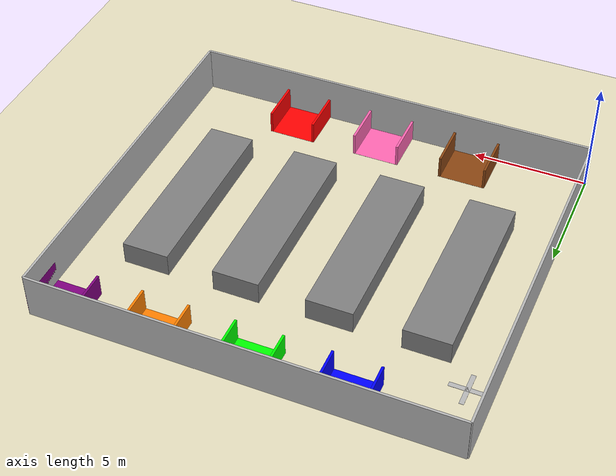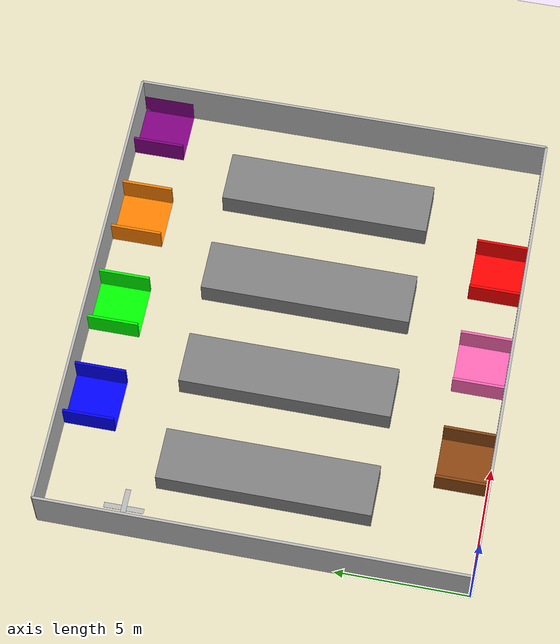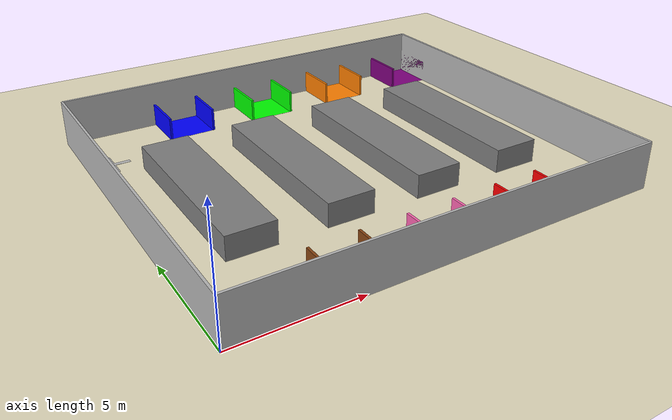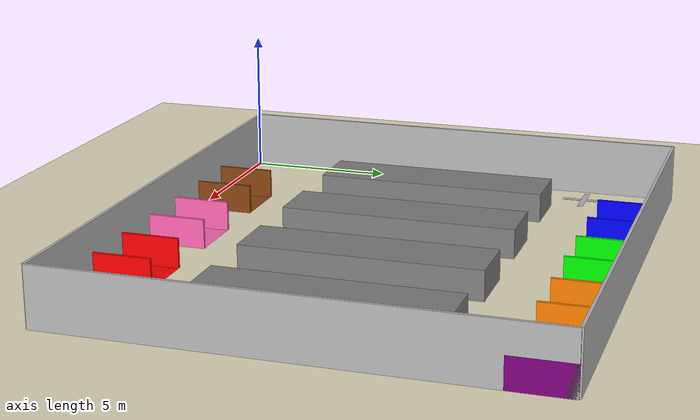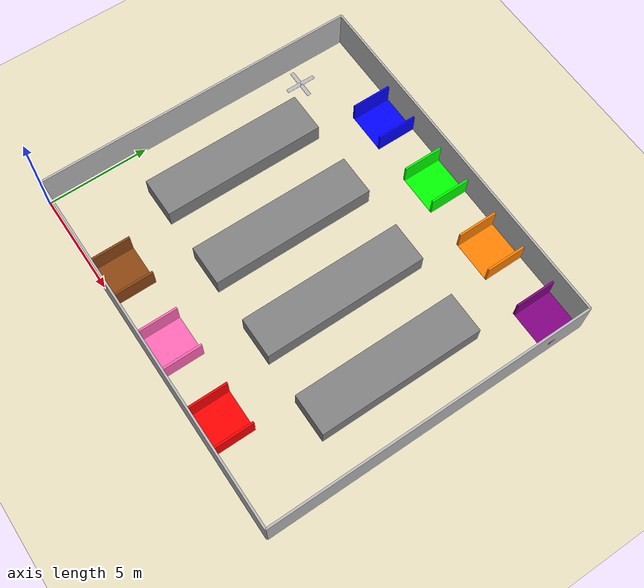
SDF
<?xml version="1.0" ?>
<sdf version="1.8">
    <world name="warehouse_world">

        <scene>
            <grid>false</grid>
        </scene>

        <physics name="1ms" type="ignored">
            <max_step_size>0.001</max_step_size>
            <real_time_factor>1.0</real_time_factor>
        </physics>

        <plugin filename="gz-sim-physics-system" name="gz::sim::systems::Physics"></plugin>
        <plugin filename="gz-sim-user-commands-system" name="gz::sim::systems::UserCommands"></plugin>
        <plugin filename="gz-sim-scene-broadcaster-system" name="gz::sim::systems::SceneBroadcaster"></plugin>

        <light type="directional" name="sun">
            <cast_shadows>true</cast_shadows>
            <pose>0 0 10 0 0 0</pose>
            <diffuse>0.8 0.8 0.8 1</diffuse>
            <specular>0.2 0.2 0.2 1</specular>
            <direction>-0.5 0.1 -0.9</direction>
        </light>

        <model name="ground_plane">
            <static>true</static>
            <pose>9 8 0 0 0 0</pose>
            <link name="link">
                <collision name="collision">
                    <geometry><plane><normal>0 0 1</normal><size>18 16</size></plane></geometry>
                </collision>
                <visual name="visual">
                    <geometry><plane><normal>0 0 1</normal><size>18 16</size></plane></geometry>
                    <material>
                        <ambient>0.85 0.82 0.70 1</ambient>
                        <diffuse>0.90 0.87 0.75 1</diffuse>
                    </material>
                </visual>
            </link>
        </model>

        <model name="wall_bottom">
            <static>true</static>
            <pose>9 0 1 0 0 0</pose>
            <link name="link">
                <collision name="collision"><geometry><box><size>18 0.1 2</size></box></geometry></collision>
                <visual name="visual"><geometry><box><size>18 0.1 2</size></box></geometry></visual>
            </link>
        </model>
        <model name="wall_left">
            <static>true</static>
            <pose>0 8 1 0 0 0</pose>
            <link name="link">
                <collision name="collision"><geometry><box><size>0.1 16 2</size></box></geometry></collision>
                <visual name="visual"><geometry><box><size>0.1 16 2</size></box></geometry></visual>
            </link>
        </model>
        <model name="wall_top">
            <static>true</static>
            <pose>9 16 1 0 0 0</pose>
            <link name="link">
                <collision name="collision"><geometry><box><size>18 0.1 2</size></box></geometry></collision>
                <visual name="visual"><geometry><box><size>18 0.1 2</size></box></geometry></visual>
            </link>
        </model>
        <model name="wall_right">
            <static>true</static>
            <pose>18 8 1 0 0 0</pose>
            <link name="link">
                <collision name="collision"><geometry><box><size>0.1 16 2</size></box></geometry></collision>
                <visual name="visual"><geometry><box><size>0.1 16 2</size></box></geometry></visual>
            </link>
        </model>

        <model name="station_A">
            <static>true</static>
            <pose>5 15 0 0 0 0</pose>
            <link name="link">
                <visual name="floor"><pose>0 0 0.001 0 0 0</pose><geometry><box><size>2 2 0.001</size></box></geometry><material><ambient>0 0 1 1</ambient><diffuse>0 0 1 1</diffuse></material></visual>
                <visual name="left_w"><pose>-1 0 0.5 0 0 0</pose><geometry><box><size>0.1 2 1</size></box></geometry><material><ambient>0 0 1 1</ambient><diffuse>0 0 1 1</diffuse></material></visual>
                <collision name="left_c"><pose>-1 0 0.5 0 0 0</pose><geometry><box><size>0.1 2 1</size></box></geometry></collision>
                <visual name="right_w"><pose>1 0 0.5 0 0 0</pose><geometry><box><size>0.1 2 1</size></box></geometry><material><ambient>0 0 1 1</ambient><diffuse>0 0 1 1</diffuse></material></visual>
                <collision name="right_c"><pose>1 0 0.5 0 0 0</pose><geometry><box><size>0.1 2 1</size></box></geometry></collision>
            </link>
        </model>

        <model name="station_B">
            <static>true</static>
            <pose>9 15 0 0 0 0</pose>
            <link name="link">
                <visual name="floor"><pose>0 0 0.001 0 0 0</pose><geometry><box><size>2 2 0.001</size></box></geometry><material><ambient>0 1 0 1</ambient><diffuse>0 1 0 1</diffuse></material></visual>
                <visual name="left_w"><pose>-1 0 0.5 0 0 0</pose><geometry><box><size>0.1 2 1</size></box></geometry><material><ambient>0 1 0 1</ambient><diffuse>0 1 0 1</diffuse></material></visual>
                <collision name="left_c"><pose>-1 0 0.5 0 0 0</pose><geometry><box><size>0.1 2 1</size></box></geometry></collision>
                <visual name="right_w"><pose>1 0 0.5 0 0 0</pose><geometry><box><size>0.1 2 1</size></box></geometry><material><ambient>0 1 0 1</ambient><diffuse>0 1 0 1</diffuse></material></visual>
                <collision name="right_c"><pose>1 0 0.5 0 0 0</pose><geometry><box><size>0.1 2 1</size></box></geometry></collision>
            </link>
        </model>

        <model name="station_C">
            <static>true</static>
            <pose>13 15 0 0 0 0</pose>
            <link name="link">
                <visual name="floor"><pose>0 0 0.001 0 0 0</pose><geometry><box><size>2 2 0.001</size></box></geometry><material><ambient>1 0.5 0 1</ambient><diffuse>1 0.5 0 1</diffuse></material></visual>
                <visual name="left_w"><pose>-1 0 0.5 0 0 0</pose><geometry><box><size>0.1 2 1</size></box></geometry><material><ambient>1 0.5 0 1</ambient><diffuse>1 0.5 0 1</diffuse></material></visual>
                <collision name="left_c"><pose>-1 0 0.5 0 0 0</pose><geometry><box><size>0.1 2 1</size></box></geometry></collision>
                <visual name="right_w"><pose>1 0 0.5 0 0 0</pose><geometry><box><size>0.1 2 1</size></box></geometry><material><ambient>1 0.5 0 1</ambient><diffuse>1 0.5 0 1</diffuse></material></visual>
                <collision name="right_c"><pose>1 0 0.5 0 0 0</pose><geometry><box><size>0.1 2 1</size></box></geometry></collision>
            </link>
        </model>

        <model name="station_D">
            <static>true</static>
            <pose>17 15 0 0 0 0</pose>
            <link name="link">
                <visual name="floor"><pose>0 0 0.001 0 0 0</pose><geometry><box><size>2 2 0.001</size></box></geometry><material><ambient>0.5 0 0.5 1</ambient><diffuse>0.5 0 0.5 1</diffuse></material></visual>
                <visual name="left_w"><pose>-1 0 0.5 0 0 0</pose><geometry><box><size>0.1 2 1</size></box></geometry><material><ambient>0.5 0 0.5 1</ambient><diffuse>0.5 0 0.5 1</diffuse></material></visual>
                <collision name="left_c"><pose>-1 0 0.5 0 0 0</pose><geometry><box><size>0.1 2 1</size></box></geometry></collision>
                <visual name="right_w"><pose>1 0 0.5 0 0 0</pose><geometry><box><size>0.1 2 1</size></box></geometry><material><ambient>0.5 0 0.5 1</ambient><diffuse>0.5 0 0.5 1</diffuse></material></visual>
                <collision name="right_c"><pose>1 0 0.5 0 0 0</pose><geometry><box><size>0.1 2 1</size></box></geometry></collision>
            </link>
        </model>

        <model name="station_E">
            <static>true</static>
            <pose>13 1 0 0 0 0</pose>
            <link name="link">
                <visual name="floor"><pose>0 0 0.001 0 0 0</pose><geometry><box><size>2 2 0.001</size></box></geometry><material><ambient>1 0 0 1</ambient><diffuse>1 0 0 1</diffuse></material></visual>
                <visual name="left_w"><pose>-1 0 0.5 0 0 0</pose><geometry><box><size>0.1 2 1</size></box></geometry><material><ambient>1 0 0 1</ambient><diffuse>1 0 0 1</diffuse></material></visual>
                <collision name="left_c"><pose>-1 0 0.5 0 0 0</pose><geometry><box><size>0.1 2 1</size></box></geometry></collision>
                <visual name="right_w"><pose>1 0 0.5 0 0 0</pose><geometry><box><size>0.1 2 1</size></box></geometry><material><ambient>1 0 0 1</ambient><diffuse>1 0 0 1</diffuse></material></visual>
                <collision name="right_c"><pose>1 0 0.5 0 0 0</pose><geometry><box><size>0.1 2 1</size></box></geometry></collision>
            </link>
        </model>

        <model name="station_F">
            <static>true</static>
            <pose>9 1 0 0 0 0</pose>
            <link name="link">
                <visual name="floor"><pose>0 0 0.001 0 0 0</pose><geometry><box><size>2 2 0.001</size></box></geometry><material><ambient>1 0.4 0.7 1</ambient><diffuse>1 0.4 0.7 1</diffuse></material></visual>
                <visual name="left_w"><pose>-1 0 0.5 0 0 0</pose><geometry><box><size>0.1 2 1</size></box></geometry><material><ambient>1 0.4 0.7 1</ambient><diffuse>1 0.4 0.7 1</diffuse></material></visual>
                <collision name="left_c"><pose>-1 0 0.5 0 0 0</pose><geometry><box><size>0.1 2 1</size></box></geometry></collision>
                <visual name="right_w"><pose>1 0 0.5 0 0 0</pose><geometry><box><size>0.1 2 1</size></box></geometry><material><ambient>1 0.4 0.7 1</ambient><diffuse>1 0.4 0.7 1</diffuse></material></visual>
                <collision name="right_c"><pose>1 0 0.5 0 0 0</pose><geometry><box><size>0.1 2 1</size></box></geometry></collision>
            </link>
        </model>

        <model name="station_G">
            <static>true</static>
            <pose>5 1 0 0 0 0</pose>
            <link name="link">
                <visual name="floor"><pose>0 0 0.001 0 0 0</pose><geometry><box><size>2 2 0.001</size></box></geometry><material><ambient>0.54 0.27 0.07 1</ambient><diffuse>0.54 0.27 0.07 1</diffuse></material></visual>
                <visual name="left_w"><pose>-1 0 0.5 0 0 0</pose><geometry><box><size>0.1 2 1</size></box></geometry><material><ambient>0.54 0.27 0.07 1</ambient><diffuse>0.54 0.27 0.07 1</diffuse></material></visual>
                <collision name="left_c"><pose>-1 0 0.5 0 0 0</pose><geometry><box><size>0.1 2 1</size></box></geometry></collision>
                <visual name="right_w"><pose>1 0 0.5 0 0 0</pose><geometry><box><size>0.1 2 1</size></box></geometry><material><ambient>0.54 0.27 0.07 1</ambient><diffuse>0.54 0.27 0.07 1</diffuse></material></visual>
                <collision name="right_c"><pose>1 0 0.5 0 0 0</pose><geometry><box><size>0.1 2 1</size></box></geometry></collision>
            </link>
        </model>

        <model name="station_S">
            <static>true</static>
            <pose>1 13 0.001 0 0 0</pose>
            <link name="link">
                <visual name="star_part1">
                    <geometry><box><size>1.5 0.2 0.01</size></box></geometry>
                </visual>
                <visual name="star_part2">
                    <pose>0 0 0 0 0 1.5708</pose>
                    <geometry><box><size>1.5 0.2 0.01</size></box></geometry>
                </visual>
            </link>
        </model>

        <model name="S1">
            <static>true</static><pose>3 8 0.5 0 0 0</pose>
            <link name="link">
                <collision name="col"><geometry><box><size>2 8 1</size></box></geometry></collision>
                <visual name="vis"><geometry><box><size>2 8 1</size></box></geometry>
                <material><ambient>0.4 0.4 0.4 1</ambient><diffuse>0.5 0.5 0.5 1</diffuse></material></visual>
            </link>
        </model>

        <model name="S2">
            <static>true</static><pose>7 8 0.5 0 0 0</pose>
            <link name="link">
                <collision name="col"><geometry><box><size>2 8 1</size></box></geometry></collision>
                <visual name="vis"><geometry><box><size>2 8 1</size></box></geometry>
                <material><ambient>0.4 0.4 0.4 1</ambient><diffuse>0.5 0.5 0.5 1</diffuse></material></visual>
            </link>
        </model>

        <model name="S3">
            <static>true</static><pose>11 8 0.5 0 0 0</pose>
            <link name="link">
                <collision name="col"><geometry><box><size>2 8 1</size></box></geometry></collision>
                <visual name="vis"><geometry><box><size>2 8 1</size></box></geometry>
                <material><ambient>0.4 0.4 0.4 1</ambient><diffuse>0.5 0.5 0.5 1</diffuse></material></visual>
            </link>
        </model>

        <model name="S4">
            <static>true</static><pose>15 8 0.5 0 0 0</pose>
            <link name="link">
                <collision name="col"><geometry><box><size>2 8 1</size></box></geometry></collision>
                <visual name="vis"><geometry><box><size>2 8 1</size></box></geometry>
                <material><ambient>0.4 0.4 0.4 1</ambient><diffuse>0.5 0.5 0.5 1</diffuse></material></visual>
            </link>
        </model>

    </world>
</sdf>
